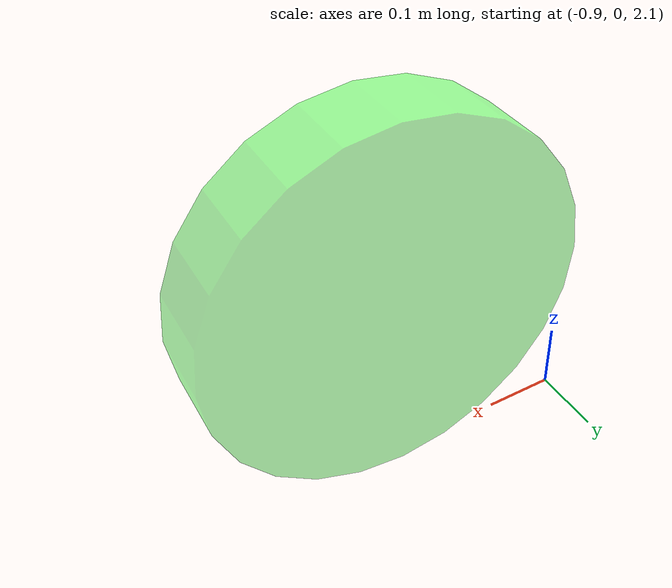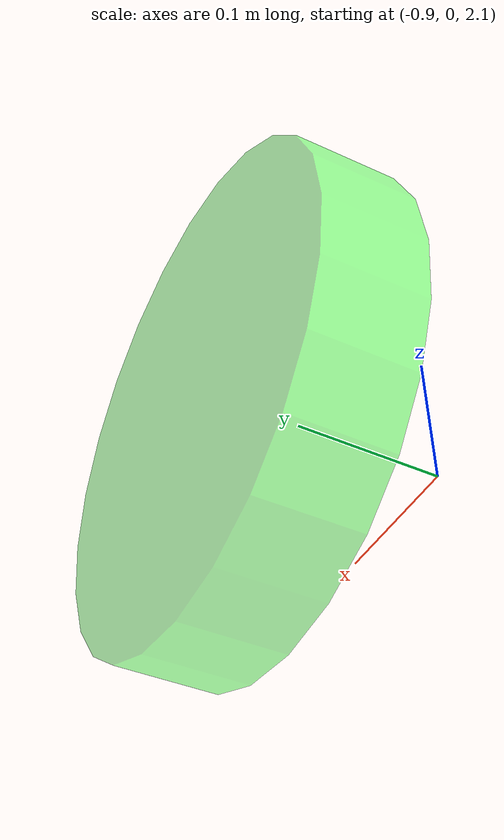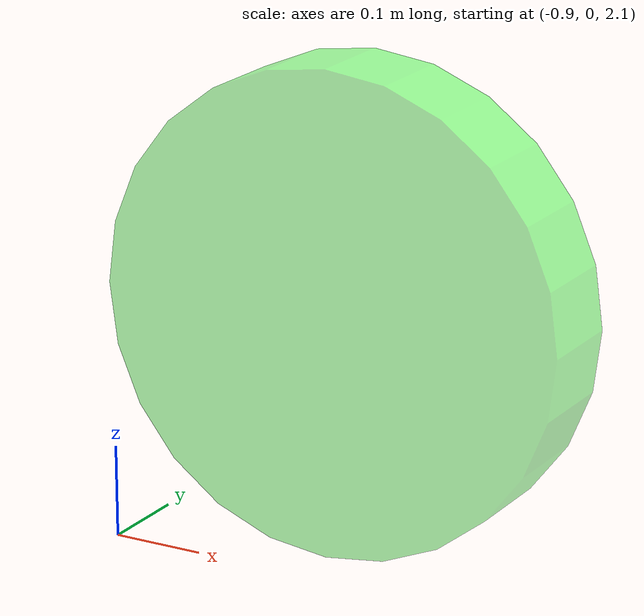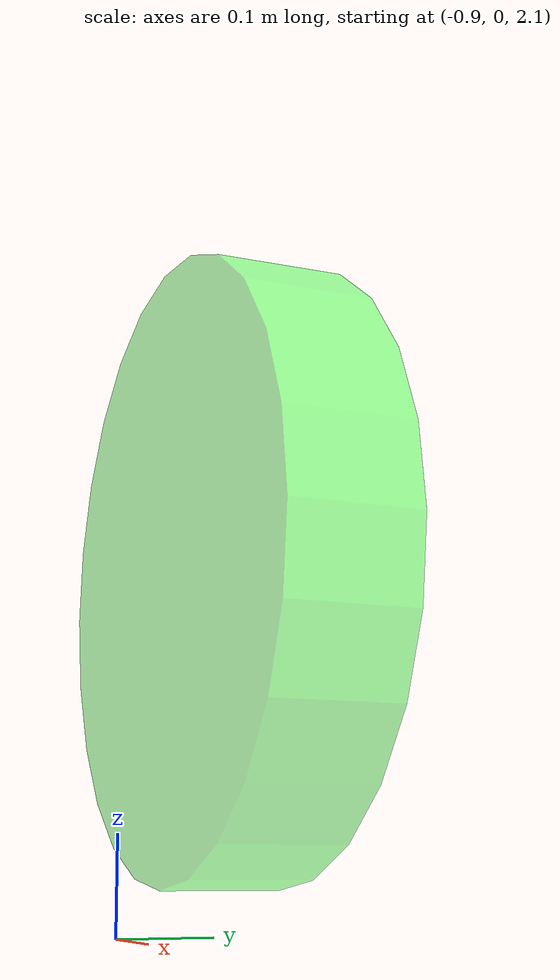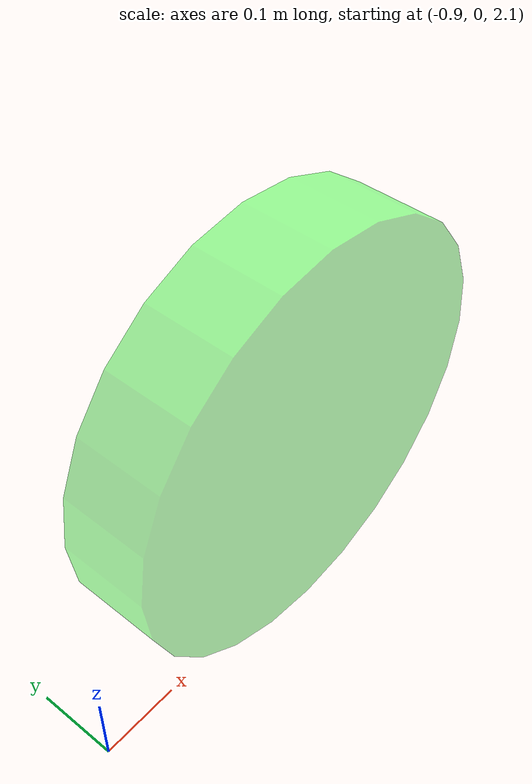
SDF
<?xml version="1.0" ?>
<sdf version="1.5">

  <model name="Green_light">
    <static>true</static>

      <link name='Green_light_source'>

        <pose>-0.62 0 2.4 1.57 0 0</pose>

        <light name='green' type='spot'>
          <pose>0 0 0.0 1.57 0 0</pose>
          <attenuation>
            <range>30</range>
            <linear>0.05</linear>
          </attenuation>
          <diffuse>0.5 1 1 1</diffuse>
          <specular>1 1 1 1</specular>
          <spot>
            <inner_angle>0.3</inner_angle>
            <outer_angle>0.35</outer_angle>
            <falloff>1</falloff>
          </spot>
          <direction>0 0 -1</direction>
        </light>

        <visual name='green'>
          <geometry>
            <cylinder>
              <radius>0.25</radius>
              <length>0.1</length>
            </cylinder>
            <sphere>
              <radius>0.4</radius>
            </sphere>
          </geometry>
          <transparency>0.6</transparency>
          <material>
            <ambient>0 1 0 1</ambient>
            <diffuse>0 1 0 1</diffuse>
            <specular>1 1 1 1</specular>
            <emissive>0 1 0 1</emissive>
          </material>
        </visual>
        </link>

    <plugin name='green_light_controller' filename='libLedPlugin.so'>
      <enable>true</enable>

      <light>
        <id>Green_light_source/green</id>
        <duration>10</duration>
        <interval>10</interval>
        <enable>true</enable>
      </light>

      </plugin>
  </model>

</sdf>
<!-- gazebo verbose /opt/ros/foxy/share/gazebo_plugins/worlds/gazebo_ros_diff_drive_demo.world -->
